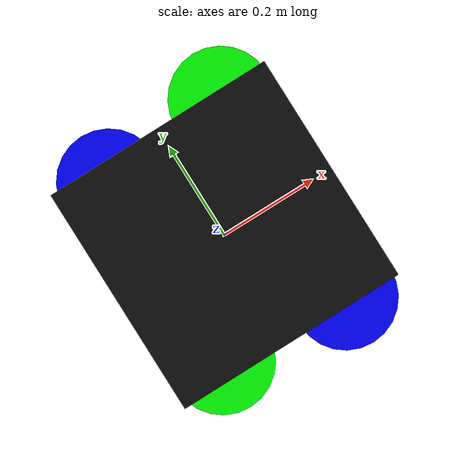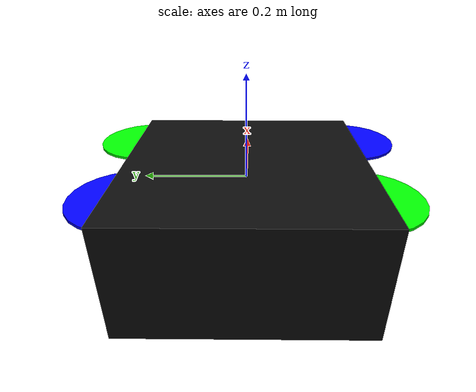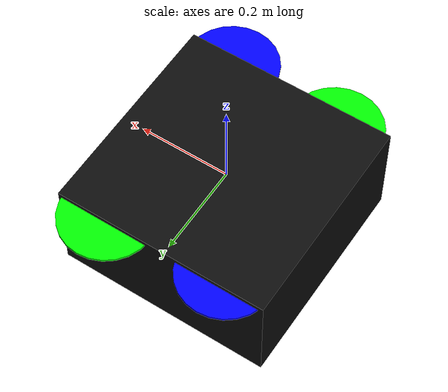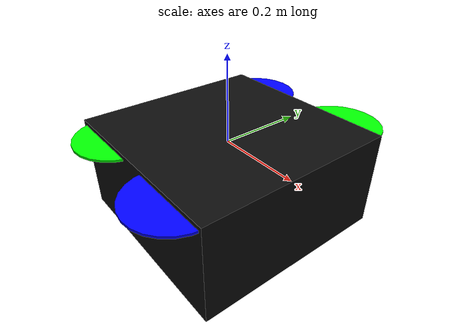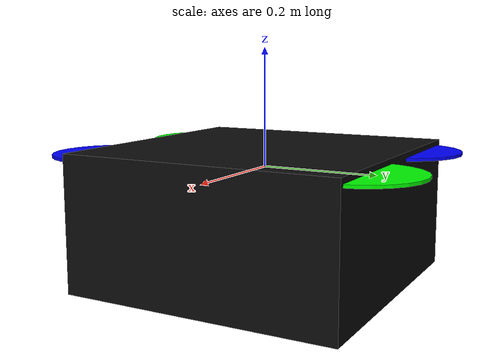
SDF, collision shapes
<?xml version='1.0'?>
<sdf version="1.9">
  <model name="custom_iris_with_ardupilot_treatment">
    <include>
      <uri>model://iris_with_standoffs_and_cam_treatment</uri>
    </include>

    <!--
      visual markers for debugging
      - blade root    - teal
      - blade tip     - orange
      - blade cp      - yellow
      - blade forward - red
      - blade upward  - blue
    -->

    <!-- plugins -->
    <plugin filename="gz-sim-joint-state-publisher-system"
      name="gz::sim::systems::JointStatePublisher">
    </plugin>
    <plugin filename="gz-sim-lift-drag-system"
        name="gz::sim::systems::LiftDrag">
      <a0>0.3</a0>
      <alpha_stall>1.4</alpha_stall>
      <cla>4.2500</cla>
      <cda>0.10</cda>
      <cma>0.0</cma>
      <cla_stall>-0.025</cla_stall>
      <cda_stall>0.0</cda_stall>
      <cma_stall>0.0</cma_stall>
      <area>0.002</area>
      <air_density>1.2041</air_density>
      <cp>0.084 0 0</cp>
      <forward>0 1 0</forward>
      <upward>0 0 1</upward>
      <link_name>iris_with_standoffs_and_cam::rotor_0</link_name>
    </plugin>
    <plugin filename="gz-sim-lift-drag-system"
        name="gz::sim::systems::LiftDrag">
      <a0>0.3</a0>
      <alpha_stall>1.4</alpha_stall>
      <cla>4.2500</cla>
      <cda>0.10</cda>
      <cma>0.0</cma>
      <cla_stall>-0.025</cla_stall>
      <cda_stall>0.0</cda_stall>
      <cma_stall>0.0</cma_stall>
      <area>0.002</area>
      <air_density>1.2041</air_density>
      <cp>-0.084 0 0</cp>
      <forward>0 -1 0</forward>
      <upward>0 0 1</upward>
      <link_name>iris_with_standoffs_and_cam::rotor_0</link_name>
    </plugin>

    <plugin filename="gz-sim-lift-drag-system"
        name="gz::sim::systems::LiftDrag">
      <a0>0.3</a0>
      <alpha_stall>1.4</alpha_stall>
      <cla>4.2500</cla>
      <cda>0.10</cda>
      <cma>0.0</cma>
      <cla_stall>-0.025</cla_stall>
      <cda_stall>0.0</cda_stall>
      <cma_stall>0.0</cma_stall>
      <area>0.002</area>
      <air_density>1.2041</air_density>
      <cp>0.084 0 0</cp>
      <forward>0 1 0</forward>
      <upward>0 0 1</upward>
      <link_name>iris_with_standoffs_and_cam::rotor_1</link_name>
    </plugin>
    <plugin filename="gz-sim-lift-drag-system"
        name="gz::sim::systems::LiftDrag">
      <a0>0.3</a0>
      <alpha_stall>1.4</alpha_stall>
      <cla>4.2500</cla>
      <cda>0.10</cda>
      <cma>0.0</cma>
      <cla_stall>-0.025</cla_stall>
      <cda_stall>0.0</cda_stall>
      <cma_stall>0.0</cma_stall>
      <area>0.002</area>
      <air_density>1.2041</air_density>
      <cp>-0.084 0 0</cp>
      <forward>0 -1 0</forward>
      <upward>0 0 1</upward>
      <link_name>iris_with_standoffs_and_cam::rotor_1</link_name>
    </plugin>

    <plugin filename="gz-sim-lift-drag-system"
        name="gz::sim::systems::LiftDrag">
      <a0>0.3</a0>
      <alpha_stall>1.4</alpha_stall>
      <cla>4.2500</cla>
      <cda>0.10</cda>
      <cma>0.0</cma>
      <cla_stall>-0.025</cla_stall>
      <cda_stall>0.0</cda_stall>
      <cma_stall>0.0</cma_stall>
      <area>0.002</area>
      <air_density>1.2041</air_density>
      <cp>0.084 0 0</cp>
      <forward>0 -1 0</forward>
      <upward>0 0 1</upward>
      <link_name>iris_with_standoffs_and_cam::rotor_2</link_name>
    </plugin>
    <plugin filename="gz-sim-lift-drag-system"
        name="gz::sim::systems::LiftDrag">
      <a0>0.3</a0>
      <alpha_stall>1.4</alpha_stall>
      <cla>4.2500</cla>
      <cda>0.10</cda>
      <cma>0.0</cma>
      <cla_stall>-0.025</cla_stall>
      <cda_stall>0.0</cda_stall>
      <cma_stall>0.0</cma_stall>
      <area>0.002</area>
      <air_density>1.2041</air_density>
      <cp>-0.084 0 0</cp>
      <forward>0 1 0</forward>
      <upward>0 0 1</upward>
      <link_name>iris_with_standoffs_and_cam::rotor_2</link_name>
    </plugin>

    <plugin filename="gz-sim-lift-drag-system"
        name="gz::sim::systems::LiftDrag">
      <a0>0.3</a0>
      <alpha_stall>1.4</alpha_stall>
      <cla>4.2500</cla>
      <cda>0.10</cda>
      <cma>0.0</cma>
      <cla_stall>-0.025</cla_stall>
      <cda_stall>0.0</cda_stall>
      <cma_stall>0.0</cma_stall>
      <area>0.002</area>
      <air_density>1.2041</air_density>
      <cp>0.084 0 0</cp>
      <forward>0 -1 0</forward>
      <upward>0 0 1</upward>
      <link_name>iris_with_standoffs_and_cam::rotor_3</link_name>
    </plugin>
    <plugin filename="gz-sim-lift-drag-system"
        name="gz::sim::systems::LiftDrag">
      <a0>0.3</a0>
      <alpha_stall>1.4</alpha_stall>
      <cla>4.2500</cla>
      <cda>0.10</cda>
      <cma>0.0</cma>
      <cla_stall>-0.025</cla_stall>
      <cda_stall>0.0</cda_stall>
      <cma_stall>0.0</cma_stall>
      <area>0.002</area>
      <air_density>1.2041</air_density>
      <cp>-0.084 0 0</cp>
      <forward>0 1 0</forward>
      <upward>0 0 1</upward>
      <link_name>iris_with_standoffs_and_cam::rotor_3</link_name>
    </plugin>

    <plugin filename="gz-sim-apply-joint-force-system"
      name="gz::sim::systems::ApplyJointForce">
      <joint_name>iris_with_standoffs_and_cam::rotor_0_joint</joint_name>
    </plugin>
    <plugin filename="gz-sim-apply-joint-force-system"
      name="gz::sim::systems::ApplyJointForce">
      <joint_name>iris_with_standoffs_and_cam::rotor_1_joint</joint_name>
    </plugin>
    <plugin filename="gz-sim-apply-joint-force-system"
      name="gz::sim::systems::ApplyJointForce">
      <joint_name>iris_with_standoffs_and_cam::rotor_2_joint</joint_name>
    </plugin>
    <plugin filename="gz-sim-apply-joint-force-system"
      name="gz::sim::systems::ApplyJointForce">
      <joint_name>iris_with_standoffs_and_cam::rotor_3_joint</joint_name>
    </plugin>

  </model>
</sdf>

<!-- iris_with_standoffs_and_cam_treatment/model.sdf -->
<sdf version='1.9'>
  <model name='iris_with_standoffs_and_cam'>
    <pose>0 0 0 0 0 0</pose>
    <!-- Lift/Drag for rotors (2 plugins per rotor: lift + reaction) -->
    <plugin filename="gz-sim-lift-drag-system" name="gz::sim::systems::LiftDrag">
      <a0>0.3</a0><alpha_stall>1.4</alpha_stall><cla>4.2500</cla><cda>0.10</cda><cma>0.0</cma>
      <cla_stall>-0.025</cla_stall><cda_stall>0.0</cda_stall><cma_stall>0.0</cma_stall>
      <area>0.002</area><air_density>1.2041</air_density>
      <cp>0.084 0 0</cp><forward>0 1 0</forward><upward>0 0 1</upward>
      <link_name>rotor_0</link_name>
    </plugin>
    <plugin filename="gz-sim-lift-drag-system" name="gz::sim::systems::LiftDrag">
      <a0>0.3</a0><alpha_stall>1.4</alpha_stall><cla>4.2500</cla><cda>0.10</cda><cma>0.0</cma>
      <cla_stall>-0.025</cla_stall><cda_stall>0.0</cda_stall><cma_stall>0.0</cma_stall>
      <area>0.002</area><air_density>1.2041</air_density>
      <cp>-0.084 0 0</cp><forward>0 -1 0</forward><upward>0 0 1</upward>
      <link_name>rotor_0</link_name>
    </plugin>
    <plugin filename="gz-sim-lift-drag-system" name="gz::sim::systems::LiftDrag">
      <a0>0.3</a0><alpha_stall>1.4</alpha_stall><cla>4.2500</cla><cda>0.10</cda><cma>0.0</cma>
      <cla_stall>-0.025</cla_stall><cda_stall>0.0</cda_stall><cma_stall>0.0</cma_stall>
      <area>0.002</area><air_density>1.2041</air_density>
      <cp>0.084 0 0</cp><forward>0 1 0</forward><upward>0 0 1</upward>
      <link_name>rotor_1</link_name>
    </plugin>
    <plugin filename="gz-sim-lift-drag-system" name="gz::sim::systems::LiftDrag">
      <a0>0.3</a0><alpha_stall>1.4</alpha_stall><cla>4.2500</cla><cda>0.10</cda><cma>0.0</cma>
      <cla_stall>-0.025</cla_stall><cda_stall>0.0</cda_stall><cma_stall>0.0</cma_stall>
      <area>0.002</area><air_density>1.2041</air_density>
      <cp>-0.084 0 0</cp><forward>0 -1 0</forward><upward>0 0 1</upward>
      <link_name>rotor_1</link_name>
    </plugin>
    <plugin filename="gz-sim-lift-drag-system" name="gz::sim::systems::LiftDrag">
      <a0>0.3</a0><alpha_stall>1.4</alpha_stall><cla>4.2500</cla><cda>0.10</cda><cma>0.0</cma>
      <cla_stall>-0.025</cla_stall><cda_stall>0.0</cda_stall><cma_stall>0.0</cma_stall>
      <area>0.002</area><air_density>1.2041</air_density>
      <cp>0.084 0 0</cp><forward>0 -1 0</forward><upward>0 0 1</upward>
      <link_name>rotor_2</link_name>
    </plugin>
    <plugin filename="gz-sim-lift-drag-system" name="gz::sim::systems::LiftDrag">
      <a0>0.3</a0><alpha_stall>1.4</alpha_stall><cla>4.2500</cla><cda>0.10</cda><cma>0.0</cma>
      <cla_stall>-0.025</cla_stall><cda_stall>0.0</cda_stall><cma_stall>0.0</cma_stall>
      <area>0.002</area><air_density>1.2041</air_density>
      <cp>-0.084 0 0</cp><forward>0 1 0</forward><upward>0 0 1</upward>
      <link_name>rotor_2</link_name>
    </plugin>
    <plugin filename="gz-sim-lift-drag-system" name="gz::sim::systems::LiftDrag">
      <a0>0.3</a0><alpha_stall>1.4</alpha_stall><cla>4.2500</cla><cda>0.10</cda><cma>0.0</cma>
      <cla_stall>-0.025</cla_stall><cda_stall>0.0</cda_stall><cma_stall>0.0</cma_stall>
      <area>0.002</area><air_density>1.2041</air_density>
      <cp>0.084 0 0</cp><forward>0 -1 0</forward><upward>0 0 1</upward>
      <link_name>rotor_3</link_name>
    </plugin>
    <plugin filename="gz-sim-lift-drag-system" name="gz::sim::systems::LiftDrag">
      <a0>0.3</a0><alpha_stall>1.4</alpha_stall><cla>4.2500</cla><cda>0.10</cda><cma>0.0</cma>
      <cla_stall>-0.025</cla_stall><cda_stall>0.0</cda_stall><cma_stall>0.0</cma_stall>
      <area>0.002</area><air_density>1.2041</air_density>
      <cp>-0.084 0 0</cp><forward>0 1 0</forward><upward>0 0 1</upward>
      <link_name>rotor_3</link_name>
    </plugin>
    <link name='base_link'>
      <velocity_decay>
        <linear>0.0</linear>
        <angular>0.0</angular>
      </velocity_decay>
      <inertial>
        <pose>0 0 0 0 0 0</pose>
        <mass>1.5</mass>
        <inertia>
          <ixx>0.008</ixx>
          <ixy>0</ixy>
          <ixz>0</ixz>
          <iyy>0.015</iyy>
          <iyz>0</iyz>
          <izz>0.017</izz>
        </inertia>
      </inertial>
      <collision name='base_collision'>
        <pose>0 0 -0.08 0 0 0</pose>
        <geometry>
          <box>
            <size>0.47 0.47 0.23</size>
          </box>
        </geometry>
        <surface>
          <contact>
            <ode>
              <max_vel>100.0</max_vel>
              <min_depth>0.001</min_depth>
            </ode>
          </contact>
          <friction>
            <ode>
              <mu>100000.0</mu>
              <mu2>100000.0</mu2>
            </ode>
          </friction>
        </surface>
      </collision>
      <visual name='base_visual'>
        <geometry>
          <mesh>
            <uri>model://iris_with_standoffs_and_cam/meshes/iris.dae</uri>
          </mesh>
        </geometry>
        <material>
          <ambient>0.05 0.05 0.05</ambient>
          <diffuse>0.05 0.05 0.05</diffuse>
          <specular>1 1 1 1</specular>
          <pbr>
            <metal>
              <metalness>0.5</metalness>
              <roughness>0.5</roughness>
            </metal>
          </pbr>
        </material>
      </visual>

      <visual name='front_left_leg_visual'>
        <pose>0.123 0.22 -0.11 0 0 0</pose>
        <geometry>
          <cylinder>
            <radius>0.005</radius>
            <length>0.17</length>
          </cylinder>
        </geometry>
        <material>
          <ambient>0.05 0.05 0.05</ambient>
          <diffuse>0.05 0.05 0.05</diffuse>
          <specular>0.01 0.01 0.01 1.0</specular>
          <pbr>
            <metal>
              <metalness>0.5</metalness>
              <roughness>0.5</roughness>
            </metal>
          </pbr>
        </material>
      </visual>
      <visual name='front_right_leg_visual'>
        <pose>0.123 -0.22 -0.11 0 0 0</pose>
        <geometry>
          <cylinder>
            <radius>0.005</radius>
            <length>0.17</length>
          </cylinder>
        </geometry>
        <material>
          <ambient>0.05 0.05 0.05</ambient>
          <diffuse>0.05 0.05 0.05</diffuse>
          <specular>0.01 0.01 0.01 1.0</specular>
          <pbr>
            <metal>
              <metalness>0.5</metalness>
              <roughness>0.5</roughness>
            </metal>
          </pbr>
        </material>
      </visual>
      <visual name='rear_left_leg_visual'>
        <pose>-0.140 0.21 -0.11 0 0 0</pose>
        <geometry>
          <cylinder>
            <radius>0.005</radius>
            <length>0.17</length>
          </cylinder>
        </geometry>
        <material>
          <ambient>0.05 0.05 0.05</ambient>
          <diffuse>0.05 0.05 0.05</diffuse>
          <specular>0.01 0.01 0.01 1.0</specular>
          <pbr>
            <metal>
              <metalness>0.5</metalness>
              <roughness>0.5</roughness>
            </metal>
          </pbr>
        </material>
      </visual>
      <visual name='rear_right_leg_visual'>
        <pose>-0.140 -0.21 -0.11 0 0 0</pose>
        <geometry>
          <cylinder>
            <radius>0.005</radius>
            <length>0.17</length>
          </cylinder>
        </geometry>
        <material>
          <ambient>0.05 0.05 0.05</ambient>
          <diffuse>0.05 0.05 0.05</diffuse>
          <specular>0.01 0.01 0.01 1.0</specular>
          <pbr>
            <metal>
              <metalness>0.5</metalness>
              <roughness>0.5</roughness>
            </metal>
          </pbr>
        </material>
      </visual>
    </link>

    <link name='imu_link'>
      <inertial>
        <pose>0 0 0 0 0 0</pose>
        <mass>0.15</mass>
        <inertia>
          <ixx>0.00001</ixx>
          <ixy>0</ixy>
          <ixz>0</ixz>
          <iyy>0.00002</iyy>
          <iyz>0</iyz>
          <izz>0.00002</izz>
        </inertia>
      </inertial>
      <sensor name="imu_sensor" type="imu">
        <pose degrees="true">0 0 0 180 0 0</pose>
        <always_on>1</always_on>
        <update_rate>1000.0</update_rate>
      </sensor>
    </link>
    <joint name='imu_joint' type='revolute'>
      <child>imu_link</child>
      <parent>base_link</parent>
      <axis>
        <xyz>0 0 1</xyz>
        <limit>
          <lower>0</lower>
          <upper>0</upper>
          <effort>0</effort>
          <velocity>0</velocity>
        </limit>
        <dynamics>
          <damping>1.0</damping>
        </dynamics>
      </axis>
    </joint>

    <link name='rotor_0'>
      <pose>0.13 -0.22 0.023 0 0 0</pose>
      <inertial>
        <pose>0 0 0 0 0 0</pose>
        <mass>0.025</mass>
        <inertia>
          <ixx>9.75e-06</ixx>
          <ixy>0</ixy>
          <ixz>0</ixz>
          <iyy>0.000166704</iyy>
          <iyz>0</iyz>
          <izz>0.000167604</izz>
        </inertia>
      </inertial>
      <collision name='rotor_0_collision'>
        <pose>0 0 0 0 0 0</pose>
        <geometry>
          <cylinder>
            <length>0.005</length>
            <radius>0.1</radius>
          </cylinder>
        </geometry>
        <surface>
          <contact>
            <ode />
          </contact>
          <friction>
            <ode />
          </friction>
        </surface>
      </collision>
      <visual name='rotor_0_visual'>
        <pose>0 0 0 0 0 0</pose>
        <geometry>
          <mesh>
            <scale>1 1 1</scale>
            <uri>model://iris_with_standoffs_and_cam/meshes/iris_prop_ccw.dae</uri>
          </mesh>
        </geometry>
        <material>
          <ambient>0 0 1</ambient>
          <diffuse>0 0 1</diffuse>
          <specular>1 1 1 1</specular>
          <pbr>
            <metal>
              <metalness>0.5</metalness>
              <roughness>0.5</roughness>
            </metal>
          </pbr>
        </material>
      </visual>
      <gravity>1</gravity>
      <velocity_decay />
      <self_collide>0</self_collide>
    </link>
    <joint name='rotor_0_joint' type='revolute'>
      <child>rotor_0</child>
      <parent>base_link</parent>
      <axis>
        <xyz>0 0 1</xyz>
        <limit>
          <lower>-1e+16</lower>
          <upper>1e+16</upper>
        </limit>
        <dynamics>
          <damping>0.004</damping>
        </dynamics>
      </axis>
      <physics>
        <ode>
          <implicit_spring_damper>1</implicit_spring_damper>
        </ode>
      </physics>
    </joint>
    <link name='rotor_1'>
      <pose>-0.13 0.2 0.023 0 0 0</pose>
      <inertial>
        <pose>0 0 0 0 0 0</pose>
        <mass>0.025</mass>
        <inertia>
          <ixx>9.75e-06</ixx>
          <ixy>0</ixy>
          <ixz>0</ixz>
          <iyy>0.000166704</iyy>
          <iyz>0</iyz>
          <izz>0.000167604</izz>
        </inertia>
      </inertial>
      <collision name='rotor_1_collision'>
        <pose>0 0 0 0 0 0</pose>
        <geometry>
          <cylinder>
            <length>0.005</length>
            <radius>0.1</radius>
          </cylinder>
        </geometry>
        <surface>
          <contact>
            <ode />
          </contact>
          <friction>
            <ode />
          </friction>
        </surface>
      </collision>
      <visual name='rotor_1_visual'>
        <pose>0 0 0 0 0 0</pose>
        <geometry>
          <mesh>
            <scale>1 1 1</scale>
            <uri>model://iris_with_standoffs_and_cam/meshes/iris_prop_ccw.dae</uri>
          </mesh>
        </geometry>
        <material>
          <ambient>0 0 1 1</ambient>
          <diffuse>0 0 1 1</diffuse>
          <specular>1 1 1 1</specular>
          <pbr>
            <metal>
              <metalness>0.5</metalness>
              <roughness>0.5</roughness>
            </metal>
          </pbr>
        </material>
      </visual>
      <gravity>1</gravity>
      <velocity_decay />
      <self_collide>0</self_collide>
    </link>
    <joint name='rotor_1_joint' type='revolute'>
      <child>rotor_1</child>
      <parent>base_link</parent>
      <axis>
        <xyz>0 0 1</xyz>
        <limit>
          <lower>-1e+16</lower>
          <upper>1e+16</upper>
        </limit>
        <dynamics>
          <damping>0.004</damping>
        </dynamics>
      </axis>
      <physics>
        <ode>
          <implicit_spring_damper>1</implicit_spring_damper>
        </ode>
      </physics>
    </joint>
    <link name='rotor_2'>
      <pose>0.13 0.22 0.023 0 0 0</pose>
      <inertial>
        <pose>0 0 0 0 0 0</pose>
        <mass>0.025</mass>
        <inertia>
          <ixx>9.75e-06</ixx>
          <ixy>0</ixy>
          <ixz>0</ixz>
          <iyy>0.000166704</iyy>
          <iyz>0</iyz>
          <izz>0.000167604</izz>
        </inertia>
      </inertial>
      <collision name='rotor_2_collision'>
        <pose>0 0 0 0 0 0</pose>
        <geometry>
          <cylinder>
            <length>0.005</length>
            <radius>0.1</radius>
          </cylinder>
        </geometry>
        <surface>
          <contact>
            <ode />
          </contact>
          <friction>
            <ode />
          </friction>
        </surface>
      </collision>
      <visual name='rotor_2_visual'>
        <pose>0 0 0 0 0 0</pose>
        <geometry>
          <mesh>
            <scale>1 1 1</scale>
            <uri>model://iris_with_standoffs_and_cam/meshes/iris_prop_cw.dae</uri>
          </mesh>
        </geometry>
        <material>
          <ambient>0 1 0</ambient>
          <diffuse>0 1 0</diffuse>
          <specular>1 1 1 1</specular>
          <pbr>
            <metal>
              <metalness>0.5</metalness>
              <roughness>0.5</roughness>
            </metal>
          </pbr>
        </material>
      </visual>
      <gravity>1</gravity>
      <velocity_decay />
      <self_collide>0</self_collide>
    </link>
    <joint name='rotor_2_joint' type='revolute'>
      <child>rotor_2</child>
      <parent>base_link</parent>
      <axis>
        <xyz>0 0 1</xyz>
        <limit>
          <lower>-1e+16</lower>
          <upper>1e+16</upper>
        </limit>
        <dynamics>
          <damping>0.004</damping>
        </dynamics>
      </axis>
      <physics>
        <ode>
          <implicit_spring_damper>1</implicit_spring_damper>
        </ode>
      </physics>
    </joint>

    <link name='rotor_3'>
      <pose>-0.13 -0.2 0.023 0 0 0</pose>
      <inertial>
        <pose>0 0 0 0 0 0</pose>
        <mass>0.025</mass>
        <inertia>
          <ixx>9.75e-06</ixx>
          <ixy>0</ixy>
          <ixz>0</ixz>
          <iyy>0.000166704</iyy>
          <iyz>0</iyz>
          <izz>0.000167604</izz>
        </inertia>
      </inertial>
      <collision name='rotor_3_collision'>
        <pose>0 0 0 0 0 0</pose>
        <geometry>
          <cylinder>
            <length>0.005</length>
            <radius>0.1</radius>
          </cylinder>
        </geometry>
        <surface>
          <contact>
            <ode />
          </contact>
          <friction>
            <ode />
          </friction>
        </surface>
      </collision>
      <visual name='rotor_3_visual'>
        <pose>0 0 0 0 0 0</pose>
        <geometry>
          <mesh>
            <scale>1 1 1</scale>
            <uri>model://iris_with_standoffs_and_cam/meshes/iris_prop_cw.dae</uri>
          </mesh>
        </geometry>
        <material>
          <ambient>0 1 0</ambient>
          <diffuse>0 1 0</diffuse>
          <specular>1 1 1 1</specular>
          <pbr>
            <metal>
              <metalness>0.5</metalness>
              <roughness>0.5</roughness>
            </metal>
          </pbr>
        </material>
      </visual>
      <gravity>1</gravity>
      <velocity_decay />
      <self_collide>0</self_collide>
    </link>
    <joint name='rotor_3_joint' type='revolute'>
      <child>rotor_3</child>
      <parent>base_link</parent>
      <axis>
        <xyz>0 0 1</xyz>
        <limit>
          <lower>-1e+16</lower>
          <upper>1e+16</upper>
        </limit>
        <dynamics>
          <damping>0.004</damping>
        </dynamics>
      </axis>
      <physics>
        <ode>
          <implicit_spring_damper>1</implicit_spring_damper>
        </ode>
      </physics>
    </joint>

    <link name="camlink">
      <pose>0.0 0.0 -0.05 0 1.5708 0</pose>
      <inertial>
        <mass>0.1</mass>
        <inertia>
          <ixx>0.000166667</ixx>
          <iyy>0.000166667</iyy>
          <izz>0.000166667</izz>
        </inertia>
      </inertial>
      <collision name="collision">
        <geometry>
          <box>
            <size>0.01 0.01 0.01</size>
          </box>
        </geometry>
      </collision>
      <visual name="visual">
        <geometry>
          <box>
            <size>0.01 0.01 0.01</size>
          </box>
        </geometry>
      </visual>

      <sensor name="camera" type="camera">
        <camera>
          <horizontal_fov>1.047</horizontal_fov>
          <image>
            <width>640</width>
            <height>480</height>
          </image>
          <clip>
            <near>0.1</near>
            <far>100</far>
          </clip>
        </camera>
        <always_on>1</always_on>
        <update_rate>30</update_rate>
        <visualize>true</visualize>
        <topic>treatment_camera</topic>
      </sensor>
    </link>
    <joint name='camlink_joint' type='fixed'>
      <child>camlink</child>
      <parent>base_link</parent>
    </joint>

  </model>
</sdf>
